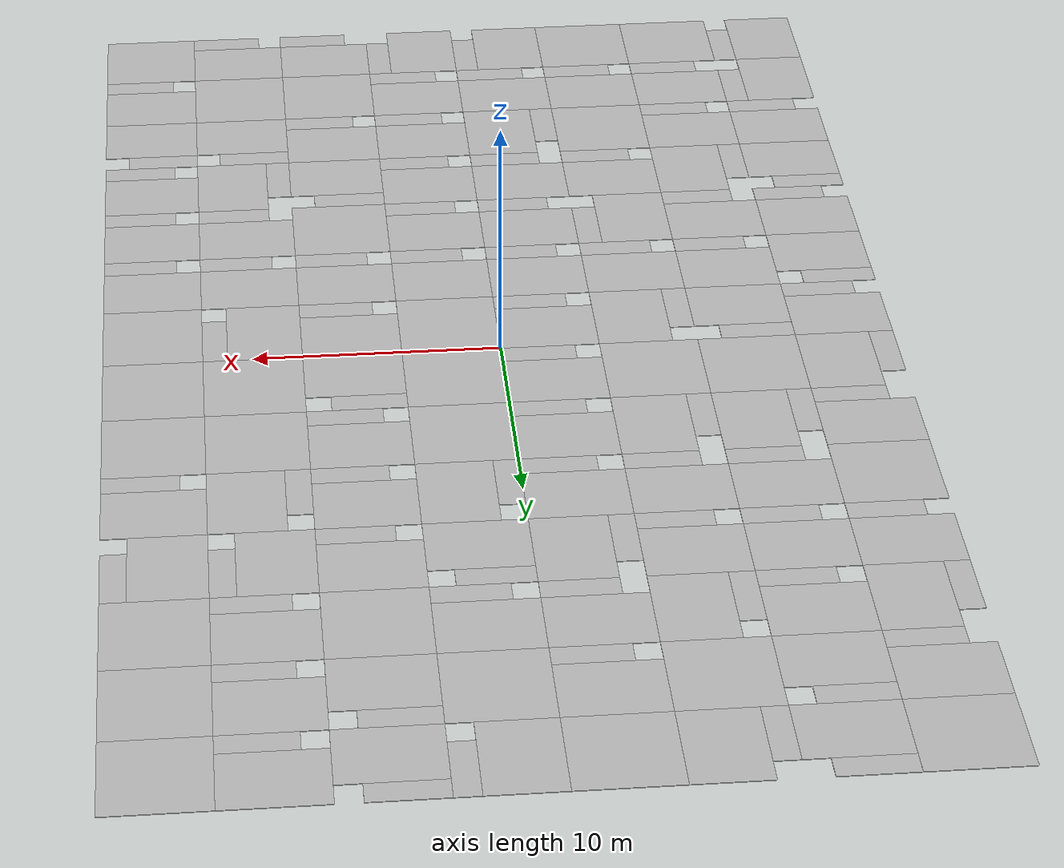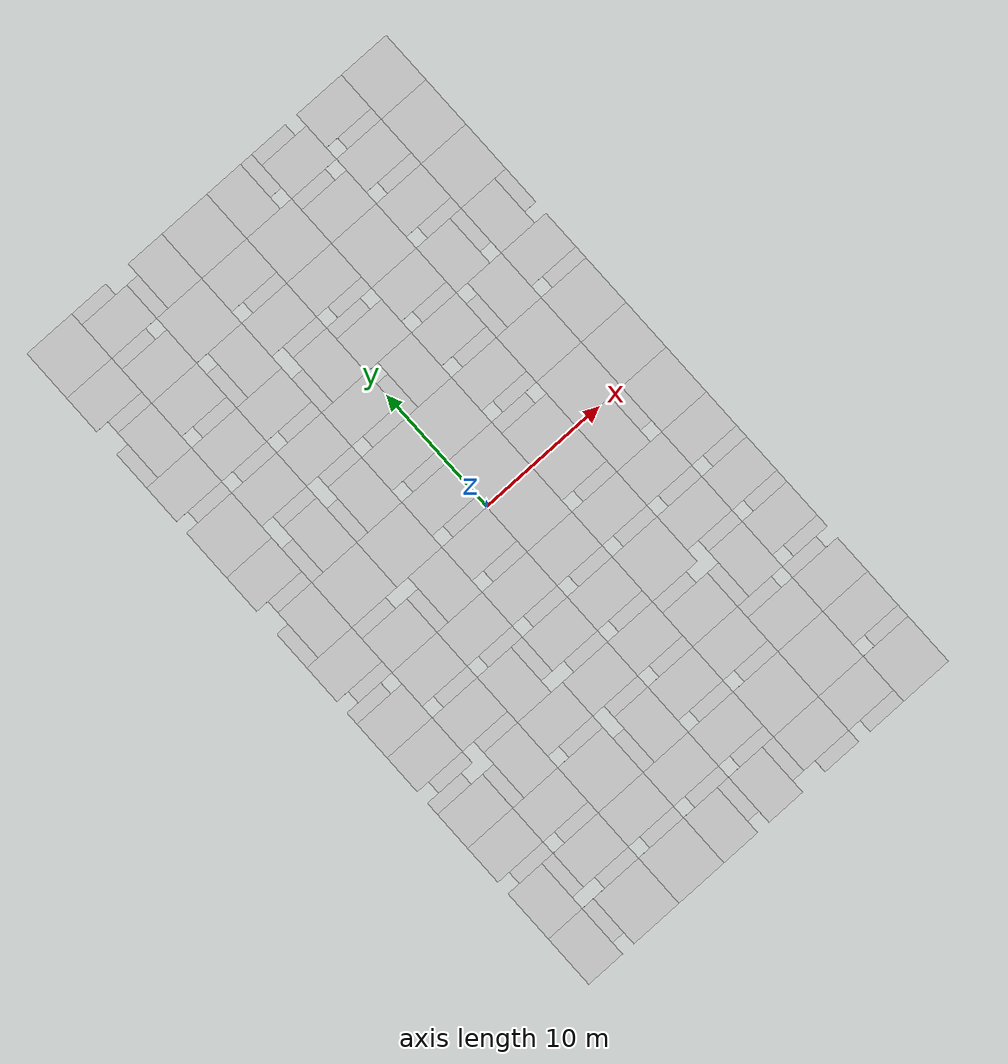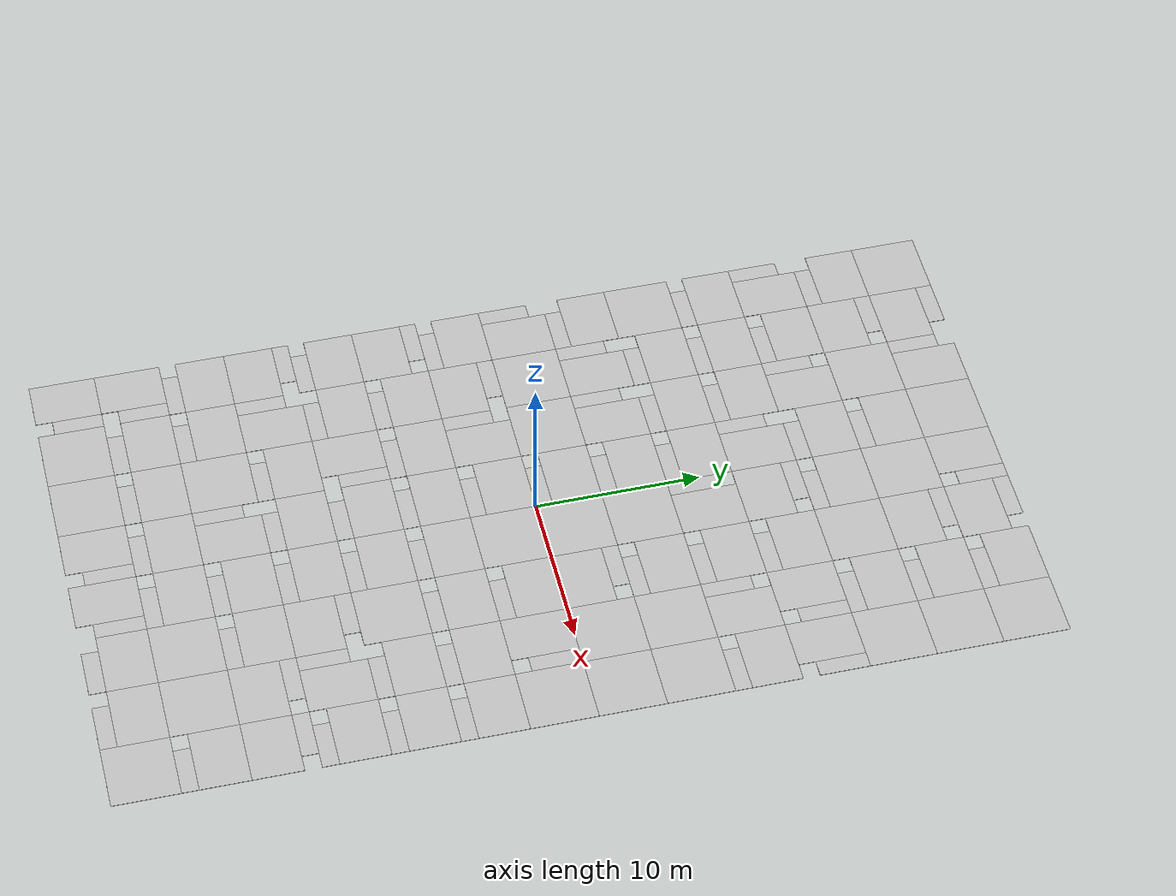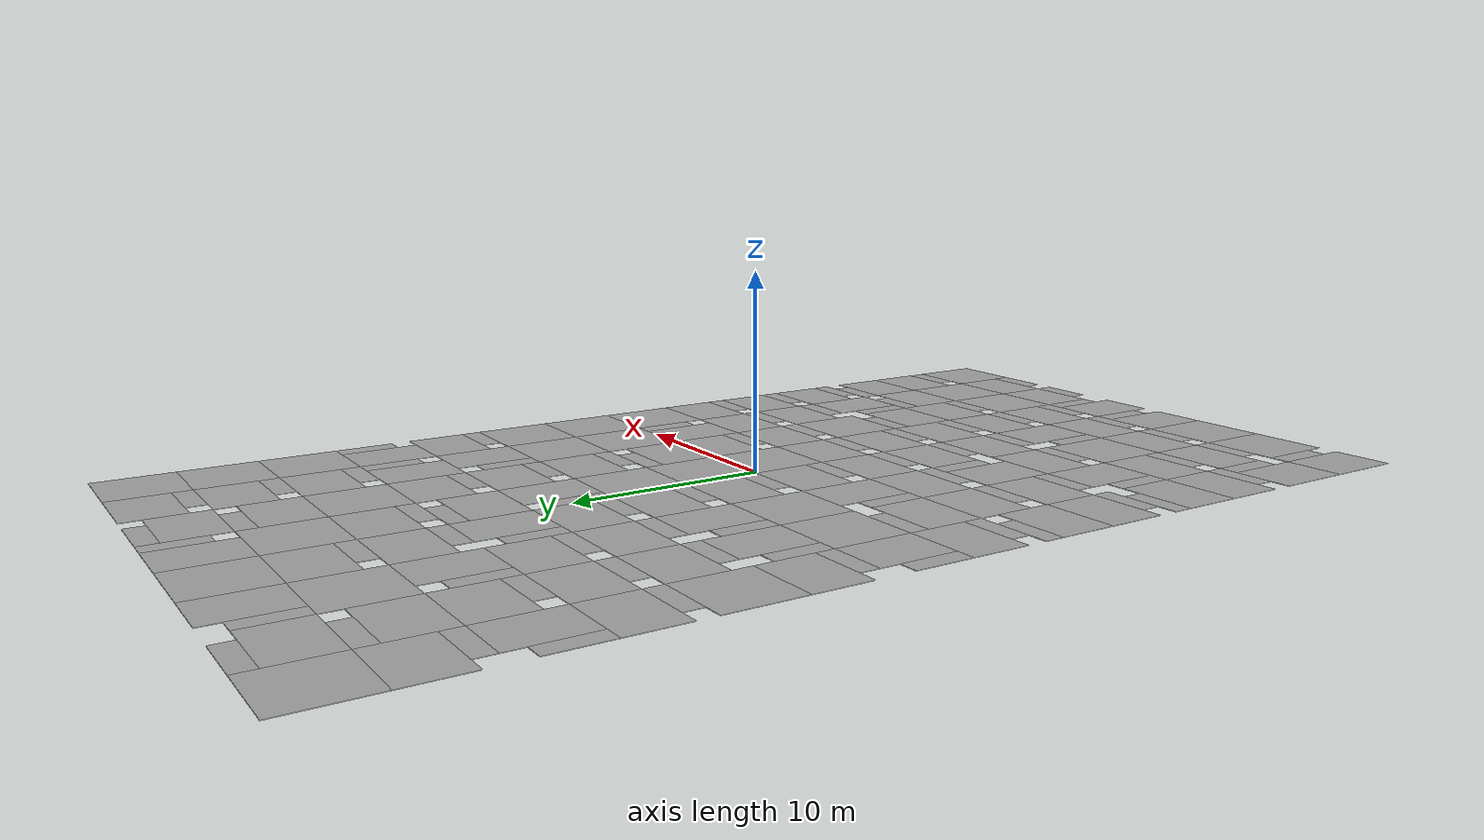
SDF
<?xml version="1.0" ?>
<sdf version="1.6">
  <model name="quad_hole_ground">

    <include>
      <name>c1</name>
      <pose>10 18 0 0 0 0</pose>
      <uri>model://quad_hole_ground_corner</uri>
    </include>
    <include>
      <name>c2</name>
      <pose>2 18 0 0 0 0</pose>
      <uri>model://quad_hole_ground_corner</uri>
    </include>
    <include>
      <name>c3</name>
      <pose>-2 18 0 0 0 0</pose>
      <uri>model://quad_hole_ground_corner</uri>
    </include>
    <include>
      <name>c4</name>
      <pose>-2 10 0 0 0 0</pose>
      <uri>model://quad_hole_ground_corner</uri>
    </include>
    <include>
      <name>c5</name>
      <pose>6 10 0 0 0 0</pose>
      <uri>model://quad_hole_ground_corner</uri>
    </include>
    <include>
      <name>c6</name>
      <pose>-2 -2 0 0 0 0</pose>
      <uri>model://quad_hole_ground_corner</uri>
    </include>
    <include>
      <name>c7</name>
      <pose>-14 -18 0 0 0 0</pose>
      <uri>model://quad_hole_ground_corner</uri>
    </include>
    <include>
      <name>c8</name>
      <pose>6 -18 0 0 0 0</pose>
      <uri>model://quad_hole_ground_corner</uri>
    </include>
    <include>
      <name>c9</name>
      <pose>-14 -2 0 0 0 0</pose>
      <uri>model://quad_hole_ground_corner</uri>
    </include>
    <include>
      <name>c10</name>
      <pose>-14 -10 0 0 0 0</pose>
      <uri>model://quad_hole_ground_corner</uri>
    </include>
    <include>
      <name>c11</name>
      <pose>-10 -6 0 0 0 0</pose>
      <uri>model://quad_hole_ground_corner</uri>
    </include>
    <include>
      <name>c12</name>
      <pose>-10 -18 0 0 0 0</pose>
      <uri>model://quad_hole_ground_corner</uri>
    </include>
    <include>
      <name>c13</name>
      <pose>-14 14 0 0 0 0</pose>
      <uri>model://quad_hole_ground_corner</uri>
    </include>
    <include>
      <name>c14</name>
      <pose>-14 22 0 0 0 0</pose>
      <uri>model://quad_hole_ground_corner</uri>
    </include>
    <include>
      <name>c15</name>
      <pose>-10 14 0 0 0 0</pose>
      <uri>model://quad_hole_ground_corner</uri>
    </include>
    <include>
      <name>c16</name>
      <pose>-10 10 0 0 0 0</pose>
      <uri>model://quad_hole_ground_corner</uri>
    </include>
    <include>
      <name>c17</name>
      <pose>-6 10 0 0 0 0</pose>
      <uri>model://quad_hole_ground_corner</uri>
    </include>
    <include>
      <name>c18</name>
      <pose>-6 14 0 0 0 0</pose>
      <uri>model://quad_hole_ground_corner</uri>
    </include>
    <include>
      <name>c19</name>
      <pose>-2 6 0 0 0 0</pose>
      <uri>model://quad_hole_ground_corner</uri>
    </include>
    <include>
      <name>c20</name>
      <pose>14 -22 0 0 0 0</pose>
      <uri>model://quad_hole_ground_corner</uri>
    </include>
    <include>
      <name>c21</name>
      <pose>14 -14 0 0 0 0</pose>
      <uri>model://quad_hole_ground_corner</uri>
    </include>
    <include>
      <name>c22</name>
      <pose>-2 -22 0 0 0 0</pose>
      <uri>model://quad_hole_ground_corner</uri>
    </include>
    <include>
      <name>c23</name>
      <pose>-6 -22 0 0 0 0</pose>
      <uri>model://quad_hole_ground_corner</uri>
    </include>
    <include>
      <name>c24</name>
      <pose>6 14 0 0 0 0</pose>
      <uri>model://quad_hole_ground_corner</uri>
    </include>
    <include>
      <name>c25</name>
      <pose>14 10 0 0 0 0</pose>
      <uri>model://quad_hole_ground_corner</uri>
    </include>
    <include>
      <name>c26</name>
      <pose>6 -2 0 0 0 0</pose>
      <uri>model://quad_hole_ground_corner</uri>
    </include>
    <include>
      <name>c27</name>
      <pose>2 -6 0 0 0 0</pose>
      <uri>model://quad_hole_ground_corner</uri>
    </include>
    <include>
      <name>c28</name>
      <pose>2 -14 0 0 0 0</pose>
      <uri>model://quad_hole_ground_corner</uri>
    </include>
    <include>
      <name>c29</name>
      <pose>-2 -10 0 0 0 0</pose>
      <uri>model://quad_hole_ground_corner</uri>
    </include>

    <include>
      <name>r1</name>
      <pose>10 22 0 0 0 0</pose>
      <uri>model://quad_hole_ground_corner</uri>
    </include>
    <include>
      <name>r2</name>
      <pose>10 26 0 0 0 0</pose>
      <uri>model://quad_hole_ground_corner</uri>
    </include>
    <include>
      <name>r3</name>
      <pose>6 26 0 0 0 -3.14159</pose>
      <uri>model://quad_hole_ground_corner</uri>
    </include>
    <include>
      <name>r4</name>
      <pose>2 26 0 0 0 1.5708</pose>
      <uri>model://quad_hole_ground_corner</uri>
    </include>
    <include>
      <name>r5</name>
      <pose>6 22 0 0 0 3.1415</pose>
      <uri>model://quad_hole_ground_corner</uri>
    </include>
    <include>
      <name>r6</name>
      <pose>-14 -6 0 0 0 3.1415</pose>
      <uri>model://quad_hole_ground_corner</uri>
    </include>
    <include>
      <name>r7</name>
      <pose>-10 -10 0 0 0 0</pose>
      <uri>model://quad_hole_ground_corner</uri>
    </include>
    <include>
      <name>r8</name>
      <pose>-10 -14 0 0 0 -1.5708</pose>
      <uri>model://quad_hole_ground_corner</uri>
    </include>
    <include>
      <name>r9</name>
      <pose>-14 -14 0 0 0 3.1415</pose>
      <uri>model://quad_hole_ground_corner</uri>
    </include>
    <include>
      <name>r10</name>
      <pose>-10 -2 0 0 0 3.1415</pose>
      <uri>model://quad_hole_ground_corner</uri>
    </include>
    <include>
      <name>r11</name>
      <pose>-6 -2 0 0 0 -1.5708</pose>
      <uri>model://quad_hole_ground_corner</uri>
    </include>
    <include>
      <name>r12</name>
      <pose>-2 22 0 0 0 0</pose>
      <uri>model://quad_hole_ground_corner</uri>
    </include>
    <include>
      <name>r13</name>
      <pose>-2 2 0 0 0 0</pose>
      <uri>model://quad_hole_ground_corner</uri>
    </include>
    <include>
      <name>r14</name>
      <pose>-2 14 0 0 0 -1.5708</pose>
      <uri>model://quad_hole_ground_corner</uri>
    </include>
    <include>
      <name>r15</name>
      <pose>14 -18 0 0 0 3.1415</pose>
      <uri>model://quad_hole_ground_corner</uri>
    </include>
    <include>
      <name>r16</name>
      <pose>-10 18 0 0 0 0</pose>
      <uri>model://quad_hole_ground_corner</uri>
    </include>
    <include>
      <name>r17</name>
      <pose>-10 22 0 0 0 3.1415</pose>
      <uri>model://quad_hole_ground_corner</uri>
    </include>
    <include>
      <name>r18</name>
      <pose>2 10 0 0 0 -1.5708</pose>
      <uri>model://quad_hole_ground_corner</uri>
    </include>
    <include>
      <name>r19</name>
      <pose>-6 18 0 0 0 -1.5708</pose>
      <uri>model://quad_hole_ground_corner</uri>
    </include>
    <include>
      <name>r20</name>
      <pose>-6 26 0 0 0 -1.5708</pose>
      <uri>model://quad_hole_ground_corner</uri>
    </include>
    <include>
      <name>r21</name>
      <pose>-10 26 0 0 0 3.1415</pose>
      <uri>model://quad_hole_ground_corner</uri>
    </include>
    <include>
      <name>r22</name>
      <pose>-14 18 0 0 0 -1.5708</pose>
      <uri>model://quad_hole_ground_corner</uri>
    </include>
    <include>
      <name>r23</name>
      <pose>2 14 0 0 0 3.1415</pose>
      <uri>model://quad_hole_ground_corner</uri>
    </include>
    <include>
      <name>r24</name>
      <pose>10 14 0 0 0 1.5708</pose>
      <uri>model://quad_hole_ground_corner</uri>
    </include>
    <include>
      <name>r25</name>
      <pose>14 14 0 0 0 1.5708</pose>
      <uri>model://quad_hole_ground_corner</uri>
    </include>
    <include>
      <name>r26</name>
      <pose>10 10 0 0 0 -1.5708</pose>
      <uri>model://quad_hole_ground_corner</uri>
    </include>
    <include>
      <name>r27</name>
      <pose>6 6 0 0 0 0</pose>
      <uri>model://quad_hole_ground_corner</uri>
    </include>
    <include>
      <name>r28</name>
      <pose>6 2 0 0 0 3.1415</pose>
      <uri>model://quad_hole_ground_corner</uri>
    </include>
    <include>
      <name>r28</name>
      <pose>6 2 0 0 0 3.1415</pose>
      <uri>model://quad_hole_ground_corner</uri>
    </include>
    <include>
      <name>r29</name>
      <pose>2 -10 0 0 0 0</pose>
      <uri>model://quad_hole_ground_corner</uri>
    </include>
    <include>
      <name>r30</name>
      <pose>-2 -6 0 0 0 0</pose>
      <uri>model://quad_hole_ground_corner</uri>
    </include>
    <include>
      <name>r31</name>
      <pose>6 -6 0 0 0 0</pose>
      <uri>model://quad_hole_ground_corner</uri>
    </include>
    <include>
      <name>r32</name>
      <pose>-14 6 0 0 0 0</pose>
      <uri>model://quad_hole_ground_corner</uri>
    </include>
    <include>
      <name>r33</name>
      <pose>-14 2 0 0 0 -1.5708</pose>
      <uri>model://quad_hole_ground_corner</uri>
    </include>
    <include>
      <name>r34</name>
      <pose>-10 6 0 0 0 -1.5708</pose>
      <uri>model://quad_hole_ground_corner</uri>
    </include>
    <include>
      <name>r35</name>
      <pose>-6 6 0 0 0 -1.5708</pose>
      <uri>model://quad_hole_ground_corner</uri>
    </include>
    <include>
      <name>r36</name>
      <pose>-6 -6 0 0 0 0</pose>
      <uri>model://quad_hole_ground_corner</uri>
    </include>
    <include>
      <name>r37</name>
      <pose>-6 -10 0 0 0 1.5708</pose>
      <uri>model://quad_hole_ground_corner</uri>
    </include>
    <include>
      <name>r38</name>
      <pose>-6 -14 0 0 0 0</pose>
      <uri>model://quad_hole_ground_corner</uri>
    </include>
    <include>
      <name>r39</name>
      <pose>-2 -14 0 0 0 0</pose>
      <uri>model://quad_hole_ground_corner</uri>
    </include>
    <include>
      <name>r40</name>
      <pose>2 -18 0 0 0 0</pose>
      <uri>model://quad_hole_ground_corner</uri>
    </include>
    <include>
      <name>r41</name>
      <pose>2 -22 0 0 0 0</pose>
      <uri>model://quad_hole_ground_corner</uri>
    </include>
    <include>
      <name>r42</name>
      <pose>-10 -22 0 0 0 0</pose>
      <uri>model://quad_hole_ground_corner</uri>
    </include>
    <include>
      <name>r43</name>
      <pose>-14 -22 0 0 0 1.5708</pose>
      <uri>model://quad_hole_ground_corner</uri>
    </include>
    <include>
      <name>r44</name>
      <pose>-14 -26 0 0 0 1.5708</pose>
      <uri>model://quad_hole_ground_corner</uri>
    </include>
    <include>
      <name>r45</name>
      <pose>-2 -26 0 0 0 1.5708</pose>
      <uri>model://quad_hole_ground_corner</uri>
    </include>
    <include>
      <name>r46</name>
      <pose>2 -26 0 0 0 1.5708</pose>
      <uri>model://quad_hole_ground_corner</uri>
    </include>
    <include>
      <name>r47</name>
      <pose>6 -26 0 0 0 0</pose>
      <uri>model://quad_hole_ground_corner</uri>
    </include>
    <include>
      <name>r48</name>
      <pose>10 -26 0 0 0 0</pose>
      <uri>model://quad_hole_ground_corner</uri>
    </include>
    <include>
      <name>r49</name>
      <pose>6 -14 0 0 0 3.1415</pose>
      <uri>model://quad_hole_ground_corner</uri>
    </include>
    <include>
      <name>r50</name>
      <pose>10 -14 0 0 0 -1.5708</pose>
      <uri>model://quad_hole_ground_corner</uri>
    </include>
    <include>
      <name>r51</name>
      <pose>14 -10 0 0 0 0</pose>
      <uri>model://quad_hole_ground_corner</uri>
    </include>
    <include>
      <name>r52</name>
      <pose>14 -6 0 0 0 0</pose>
      <uri>model://quad_hole_ground_corner</uri>
    </include>
    <include>
      <name>r53</name>
      <pose>10 -6 0 0 0 0</pose>
      <uri>model://quad_hole_ground_corner</uri>
    </include>
    <include>
      <name>r54</name>
      <pose>10 -10 0 0 0 0</pose>
      <uri>model://quad_hole_ground_corner</uri>
    </include>
    <include>
      <name>r55</name>
      <pose>10 -2 0 0 0 1.5708</pose>
      <uri>model://quad_hole_ground_corner</uri>
    </include>
    <include>
      <name>r56</name>
      <pose>10 -18 0 0 0 3.1415</pose>
      <uri>model://quad_hole_ground_corner</uri>
    </include>
    <include>
      <name>r57</name>
      <pose>-2 -18 0 0 0 -1.5708</pose>
      <uri>model://quad_hole_ground_corner</uri>
    </include>

    <include>
      <name>u1</name>
      <pose>14 26 0 0 0 0</pose>
      <uri>model://quad_hole_ground_unit</uri>
    </include>
    <include>
      <name>u2</name>
      <pose>14 22 0 0 0 0</pose>
      <uri>model://quad_hole_ground_unit</uri>
    </include>
    <include>
      <name>u3</name>
      <pose>14 18 0 0 0 0</pose>
      <uri>model://quad_hole_ground_unit</uri>
    </include>
    <include>
      <name>u4</name>
      <pose>2 22 0 0 0 0</pose>
      <uri>model://quad_hole_ground_unit</uri>
    </include>
    <include>
      <name>u5</name>
      <pose>6 18 0 0 0 0</pose>
      <uri>model://quad_hole_ground_unit</uri>
    </include>
    <include>
      <name>u6</name>
      <pose>-2 26 0 0 0 0</pose>
      <uri>model://quad_hole_ground_unit</uri>
    </include>
    <include>
      <name>u7</name>
      <pose>-14 26 0 0 0 0</pose>
      <uri>model://quad_hole_ground_unit</uri>
    </include>
    <include>
      <name>u8</name>
      <pose>-10 2 0 0 0 0</pose>
      <uri>model://quad_hole_ground_unit</uri>
    </include>
    <include>
      <name>u9</name>
      <pose>-10 -26 0 0 0 0</pose>
      <uri>model://quad_hole_ground_unit</uri>
    </include>
    <include>
      <name>u10</name>
      <pose>-6 -26 0 0 0 0</pose>
      <uri>model://quad_hole_ground_unit</uri>
    </include>
    <include>
      <name>u11</name>
      <pose>6 -22 0 0 0 0</pose>
      <uri>model://quad_hole_ground_unit</uri>
    </include>
    <include>
      <name>u12</name>
      <pose>10 -22 0 0 0 0</pose>
      <uri>model://quad_hole_ground_unit</uri>
    </include>
    <include>
      <name>u13</name>
      <pose>6 -10 0 0 0 0</pose>
      <uri>model://quad_hole_ground_unit</uri>
    </include>
    <include>
      <name>u14</name>
      <pose>2 -2 0 0 0 0</pose>
      <uri>model://quad_hole_ground_unit</uri>
    </include>
    <include>
      <name>u15</name>
      <pose>2 2 0 0 0 0</pose>
      <uri>model://quad_hole_ground_unit</uri>
    </include>
    <include>
      <name>u16</name>
      <pose>2 6 0 0 0 0</pose>
      <uri>model://quad_hole_ground_unit</uri>
    </include>
    <include>
      <name>u17</name>
      <pose>10 6 0 0 0 0</pose>
      <uri>model://quad_hole_ground_unit</uri>
    </include>
    <include>
      <name>u18</name>
      <pose>14 6 0 0 0 0</pose>
      <uri>model://quad_hole_ground_unit</uri>
    </include>
    <include>
      <name>u19</name>
      <pose>14 2 0 0 0 0</pose>
      <uri>model://quad_hole_ground_unit</uri>
    </include>
    <include>
      <name>u20</name>
      <pose>14 -2 0 0 0 0</pose>
      <uri>model://quad_hole_ground_unit</uri>
    </include>
    <include>
      <name>u21</name>
      <pose>10 2 0 0 0 0</pose>
      <uri>model://quad_hole_ground_unit</uri>
    </include>
    <include>
      <name>u22</name>
      <pose>-6 -18 0 0 0 0</pose>
      <uri>model://quad_hole_ground_unit</uri>
    </include>
    <include>
      <name>u23</name>
      <pose>-6 22 0 0 0 0</pose>
      <uri>model://quad_hole_ground_unit</uri>
    </include>
    <include>
      <name>u24</name>
      <pose>14 -26 0 0 0 0</pose>
      <uri>model://quad_hole_ground_unit</uri>
    </include>
    <include>
      <name>u25</name>
      <pose>-14 10 0 0 0 0</pose>
      <uri>model://quad_hole_ground_unit</uri>
    </include>
    <include>
      <name>u26</name>
      <pose>-6 2 0 0 0 0</pose>
      <uri>model://quad_hole_ground_unit</uri>
    </include>

  </model>
</sdf>

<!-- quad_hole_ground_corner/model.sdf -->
<sdf version="1.5">
  <model name="quad_hole_ground_corner">
    <static>true</static>
    <link name="ground">
      <pose>0 0.5 0 0 0 0</pose>
      <collision name="groundc">
        <geometry>
          <box>
            <size>4 3 0.03</size>
          </box>
        </geometry>
      </collision>
      <visual name="groundv">
        <geometry>
          <box>
            <size>4 3 0.03</size>
          </box>
        </geometry>
        <material>
          <script>
            <uri>model://quad_hole_ground_corner/materials/scripts</uri>
            <uri>model://quad_hole_ground_corner/materials/textures</uri>
            <name>vrc/quad_hole_ground_corner</name>
          </script>
        </material>
      </visual>
    </link>
    <link name="ground2">
      <pose>0.5 -1.5 0 0 0 0</pose>
      <collision name="groundc2">
        <geometry>
          <box>
            <size>3 1 0.03</size>
          </box>
        </geometry>
      </collision>
      <visual name="groundv2">
        <geometry>
          <box>
            <size>3 1 0.03</size>
          </box>
        </geometry>
        <material>
          <script>
            <uri>model://quad_hole_ground_corner/materials/scripts</uri>
            <uri>model://quad_hole_ground_corner/materials/textures</uri>
            <name>vrc/quad_hole_ground_corner</name>
          </script>
        </material>
      </visual>
    </link>

  </model>
</sdf>

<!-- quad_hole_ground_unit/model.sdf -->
<sdf version="1.5">
  <model name="quad_hole_ground_unit">
    <static>true</static>
    <link name="ground">
      <pose>0 0 0 0 0 0</pose>
      <collision name="groundc">
        <geometry>
          <box>
            <size>4 4 0.03</size>
          </box>
        </geometry>
      </collision>
      <visual name="groundv">
        <geometry>
          <box>
            <size>4 4 0.03</size>
          </box>
        </geometry>
        <material>
          <script>
            <uri>model://quad_hole_ground_unit/materials/scripts</uri>
            <uri>model://quad_hole_ground_unit/materials/textures</uri>
            <name>vrc/quad_hole_ground_unit</name>
          </script>
        </material>
      </visual>
    </link>
  </model>
</sdf>
